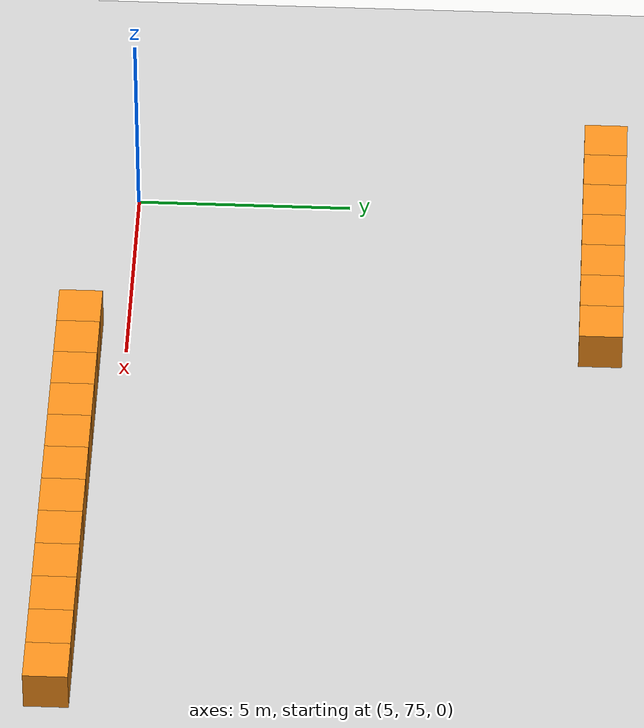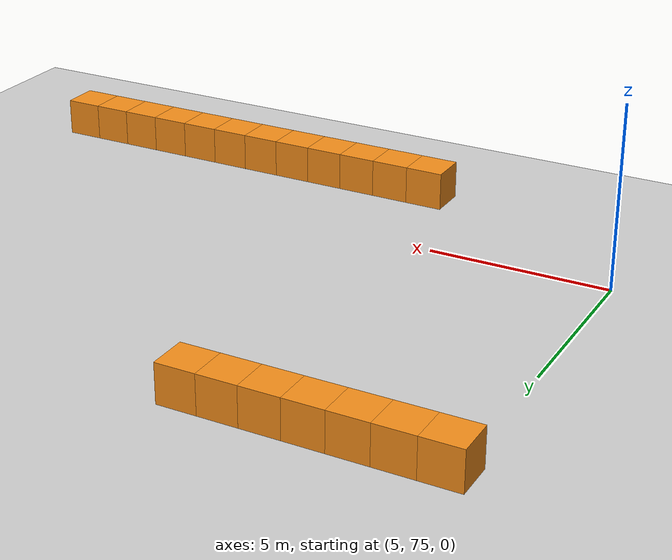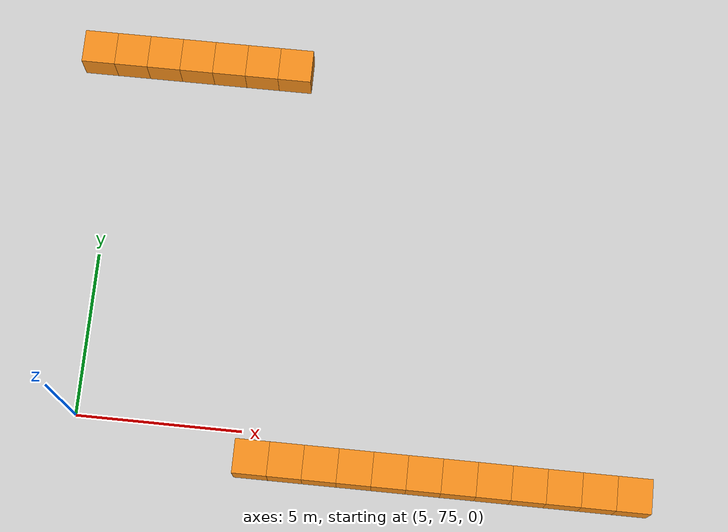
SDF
<sdf version="1.6">
 <world name="default">
  <include><uri>model://ground_plane</uri></include>
  <model name="unit_box_009">
   <pose>4.50    86.00     1.50 0 0 0</pose>
   <static>1</static>
   <link name="link">
    <inertial>
     <mass>5000</mass>
     <inertia><ixx>200</ixx><ixy>0</ixy><ixz>0</ixz><iyy>200</iyy><iyz>0</iyz><izz>200</izz></inertia>
    </inertial>
    <collision name="collision"><geometry><box><size>1 1 1</size></box></geometry></collision>
    <visual name="visual">
     <geometry><box><size>1 1 1</size></box></geometry>
     <material>
      <script><name>Gazebo/Orange</name><uri>file://media/materials/scripts/gazebo.material</uri></script>
     </material>
    </visual>
   </link>
  </model>
  <model name="unit_box_022">
   <pose>5.50    86.00     1.50 0 0 0</pose>
   <static>1</static>
   <link name="link">
    <inertial>
     <mass>5000</mass>
     <inertia><ixx>200</ixx><ixy>0</ixy><ixz>0</ixz><iyy>200</iyy><iyz>0</iyz><izz>200</izz></inertia>
    </inertial>
    <collision name="collision"><geometry><box><size>1 1 1</size></box></geometry></collision>
    <visual name="visual">
     <geometry><box><size>1 1 1</size></box></geometry>
     <material>
      <script><name>Gazebo/Orange</name><uri>file://media/materials/scripts/gazebo.material</uri></script>
     </material>
    </visual>
   </link>
  </model>
  <model name="unit_box_035">
   <pose>6.50    86.00     1.50 0 0 0</pose>
   <static>1</static>
   <link name="link">
    <inertial>
     <mass>5000</mass>
     <inertia><ixx>200</ixx><ixy>0</ixy><ixz>0</ixz><iyy>200</iyy><iyz>0</iyz><izz>200</izz></inertia>
    </inertial>
    <collision name="collision"><geometry><box><size>1 1 1</size></box></geometry></collision>
    <visual name="visual">
     <geometry><box><size>1 1 1</size></box></geometry>
     <material>
      <script><name>Gazebo/Orange</name><uri>file://media/materials/scripts/gazebo.material</uri></script>
     </material>
    </visual>
   </link>
  </model>
  <model name="unit_box_048">
   <pose>7.50    86.00     1.50 0 0 0</pose>
   <static>1</static>
   <link name="link">
    <inertial>
     <mass>5000</mass>
     <inertia><ixx>200</ixx><ixy>0</ixy><ixz>0</ixz><iyy>200</iyy><iyz>0</iyz><izz>200</izz></inertia>
    </inertial>
    <collision name="collision"><geometry><box><size>1 1 1</size></box></geometry></collision>
    <visual name="visual">
     <geometry><box><size>1 1 1</size></box></geometry>
     <material>
      <script><name>Gazebo/Orange</name><uri>file://media/materials/scripts/gazebo.material</uri></script>
     </material>
    </visual>
   </link>
  </model>
  <model name="unit_box_061">
   <pose>8.50    86.00     1.50 0 0 0</pose>
   <static>1</static>
   <link name="link">
    <inertial>
     <mass>5000</mass>
     <inertia><ixx>200</ixx><ixy>0</ixy><ixz>0</ixz><iyy>200</iyy><iyz>0</iyz><izz>200</izz></inertia>
    </inertial>
    <collision name="collision"><geometry><box><size>1 1 1</size></box></geometry></collision>
    <visual name="visual">
     <geometry><box><size>1 1 1</size></box></geometry>
     <material>
      <script><name>Gazebo/Orange</name><uri>file://media/materials/scripts/gazebo.material</uri></script>
     </material>
    </visual>
   </link>
  </model>
  <model name="unit_box_074">
   <pose>9.50    86.00     1.50 0 0 0</pose>
   <static>1</static>
   <link name="link">
    <inertial>
     <mass>5000</mass>
     <inertia><ixx>200</ixx><ixy>0</ixy><ixz>0</ixz><iyy>200</iyy><iyz>0</iyz><izz>200</izz></inertia>
    </inertial>
    <collision name="collision"><geometry><box><size>1 1 1</size></box></geometry></collision>
    <visual name="visual">
     <geometry><box><size>1 1 1</size></box></geometry>
     <material>
      <script><name>Gazebo/Orange</name><uri>file://media/materials/scripts/gazebo.material</uri></script>
     </material>
    </visual>
   </link>
  </model>
  <model name="unit_box_086">
   <pose>10.50    74.00     1.50 0 0 0</pose>
   <static>1</static>
   <link name="link">
    <inertial>
     <mass>5000</mass>
     <inertia><ixx>200</ixx><ixy>0</ixy><ixz>0</ixz><iyy>200</iyy><iyz>0</iyz><izz>200</izz></inertia>
    </inertial>
    <collision name="collision"><geometry><box><size>1 1 1</size></box></geometry></collision>
    <visual name="visual">
     <geometry><box><size>1 1 1</size></box></geometry>
     <material>
      <script><name>Gazebo/Orange</name><uri>file://media/materials/scripts/gazebo.material</uri></script>
     </material>
    </visual>
   </link>
  </model>
  <model name="unit_box_087">
   <pose>10.50    86.00     1.50 0 0 0</pose>
   <static>1</static>
   <link name="link">
    <inertial>
     <mass>5000</mass>
     <inertia><ixx>200</ixx><ixy>0</ixy><ixz>0</ixz><iyy>200</iyy><iyz>0</iyz><izz>200</izz></inertia>
    </inertial>
    <collision name="collision"><geometry><box><size>1 1 1</size></box></geometry></collision>
    <visual name="visual">
     <geometry><box><size>1 1 1</size></box></geometry>
     <material>
      <script><name>Gazebo/Orange</name><uri>file://media/materials/scripts/gazebo.material</uri></script>
     </material>
    </visual>
   </link>
  </model>
  <model name="unit_box_099">
   <pose>11.50    74.00     1.50 0 0 0</pose>
   <static>1</static>
   <link name="link">
    <inertial>
     <mass>5000</mass>
     <inertia><ixx>200</ixx><ixy>0</ixy><ixz>0</ixz><iyy>200</iyy><iyz>0</iyz><izz>200</izz></inertia>
    </inertial>
    <collision name="collision"><geometry><box><size>1 1 1</size></box></geometry></collision>
    <visual name="visual">
     <geometry><box><size>1 1 1</size></box></geometry>
     <material>
      <script><name>Gazebo/Orange</name><uri>file://media/materials/scripts/gazebo.material</uri></script>
     </material>
    </visual>
   </link>
  </model>
  <model name="unit_box_112">
   <pose>12.50    74.00     1.50 0 0 0</pose>
   <static>1</static>
   <link name="link">
    <inertial>
     <mass>5000</mass>
     <inertia><ixx>200</ixx><ixy>0</ixy><ixz>0</ixz><iyy>200</iyy><iyz>0</iyz><izz>200</izz></inertia>
    </inertial>
    <collision name="collision"><geometry><box><size>1 1 1</size></box></geometry></collision>
    <visual name="visual">
     <geometry><box><size>1 1 1</size></box></geometry>
     <material>
      <script><name>Gazebo/Orange</name><uri>file://media/materials/scripts/gazebo.material</uri></script>
     </material>
    </visual>
   </link>
  </model>
  <model name="unit_box_125">
   <pose>13.50    74.00     1.50 0 0 0</pose>
   <static>1</static>
   <link name="link">
    <inertial>
     <mass>5000</mass>
     <inertia><ixx>200</ixx><ixy>0</ixy><ixz>0</ixz><iyy>200</iyy><iyz>0</iyz><izz>200</izz></inertia>
    </inertial>
    <collision name="collision"><geometry><box><size>1 1 1</size></box></geometry></collision>
    <visual name="visual">
     <geometry><box><size>1 1 1</size></box></geometry>
     <material>
      <script><name>Gazebo/Orange</name><uri>file://media/materials/scripts/gazebo.material</uri></script>
     </material>
    </visual>
   </link>
  </model>
  <model name="unit_box_138">
   <pose>14.50    74.00     1.50 0 0 0</pose>
   <static>1</static>
   <link name="link">
    <inertial>
     <mass>5000</mass>
     <inertia><ixx>200</ixx><ixy>0</ixy><ixz>0</ixz><iyy>200</iyy><iyz>0</iyz><izz>200</izz></inertia>
    </inertial>
    <collision name="collision"><geometry><box><size>1 1 1</size></box></geometry></collision>
    <visual name="visual">
     <geometry><box><size>1 1 1</size></box></geometry>
     <material>
      <script><name>Gazebo/Orange</name><uri>file://media/materials/scripts/gazebo.material</uri></script>
     </material>
    </visual>
   </link>
  </model>
  <model name="unit_box_151">
   <pose>15.50    74.00     1.50 0 0 0</pose>
   <static>1</static>
   <link name="link">
    <inertial>
     <mass>5000</mass>
     <inertia><ixx>200</ixx><ixy>0</ixy><ixz>0</ixz><iyy>200</iyy><iyz>0</iyz><izz>200</izz></inertia>
    </inertial>
    <collision name="collision"><geometry><box><size>1 1 1</size></box></geometry></collision>
    <visual name="visual">
     <geometry><box><size>1 1 1</size></box></geometry>
     <material>
      <script><name>Gazebo/Orange</name><uri>file://media/materials/scripts/gazebo.material</uri></script>
     </material>
    </visual>
   </link>
  </model>
  <model name="unit_box_164">
   <pose>16.50    74.00     1.50 0 0 0</pose>
   <static>1</static>
   <link name="link">
    <inertial>
     <mass>5000</mass>
     <inertia><ixx>200</ixx><ixy>0</ixy><ixz>0</ixz><iyy>200</iyy><iyz>0</iyz><izz>200</izz></inertia>
    </inertial>
    <collision name="collision"><geometry><box><size>1 1 1</size></box></geometry></collision>
    <visual name="visual">
     <geometry><box><size>1 1 1</size></box></geometry>
     <material>
      <script><name>Gazebo/Orange</name><uri>file://media/materials/scripts/gazebo.material</uri></script>
     </material>
    </visual>
   </link>
  </model>
  <model name="unit_box_177">
   <pose>17.50    74.00     1.50 0 0 0</pose>
   <static>1</static>
   <link name="link">
    <inertial>
     <mass>5000</mass>
     <inertia><ixx>200</ixx><ixy>0</ixy><ixz>0</ixz><iyy>200</iyy><iyz>0</iyz><izz>200</izz></inertia>
    </inertial>
    <collision name="collision"><geometry><box><size>1 1 1</size></box></geometry></collision>
    <visual name="visual">
     <geometry><box><size>1 1 1</size></box></geometry>
     <material>
      <script><name>Gazebo/Orange</name><uri>file://media/materials/scripts/gazebo.material</uri></script>
     </material>
    </visual>
   </link>
  </model>
  <model name="unit_box_190">
   <pose>18.50    74.00     1.50 0 0 0</pose>
   <static>1</static>
   <link name="link">
    <inertial>
     <mass>5000</mass>
     <inertia><ixx>200</ixx><ixy>0</ixy><ixz>0</ixz><iyy>200</iyy><iyz>0</iyz><izz>200</izz></inertia>
    </inertial>
    <collision name="collision"><geometry><box><size>1 1 1</size></box></geometry></collision>
    <visual name="visual">
     <geometry><box><size>1 1 1</size></box></geometry>
     <material>
      <script><name>Gazebo/Orange</name><uri>file://media/materials/scripts/gazebo.material</uri></script>
     </material>
    </visual>
   </link>
  </model>
  <model name="unit_box_203">
   <pose>19.50    74.00     1.50 0 0 0</pose>
   <static>1</static>
   <link name="link">
    <inertial>
     <mass>5000</mass>
     <inertia><ixx>200</ixx><ixy>0</ixy><ixz>0</ixz><iyy>200</iyy><iyz>0</iyz><izz>200</izz></inertia>
    </inertial>
    <collision name="collision"><geometry><box><size>1 1 1</size></box></geometry></collision>
    <visual name="visual">
     <geometry><box><size>1 1 1</size></box></geometry>
     <material>
      <script><name>Gazebo/Orange</name><uri>file://media/materials/scripts/gazebo.material</uri></script>
     </material>
    </visual>
   </link>
  </model>
  <model name="unit_box_216">
   <pose>20.50    74.00     1.50 0 0 0</pose>
   <static>1</static>
   <link name="link">
    <inertial>
     <mass>5000</mass>
     <inertia><ixx>200</ixx><ixy>0</ixy><ixz>0</ixz><iyy>200</iyy><iyz>0</iyz><izz>200</izz></inertia>
    </inertial>
    <collision name="collision"><geometry><box><size>1 1 1</size></box></geometry></collision>
    <visual name="visual">
     <geometry><box><size>1 1 1</size></box></geometry>
     <material>
      <script><name>Gazebo/Orange</name><uri>file://media/materials/scripts/gazebo.material</uri></script>
     </material>
    </visual>
   </link>
  </model>
  <model name="unit_box_229">
   <pose>21.50    74.00     1.50 0 0 0</pose>
   <static>1</static>
   <link name="link">
    <inertial>
     <mass>5000</mass>
     <inertia><ixx>200</ixx><ixy>0</ixy><ixz>0</ixz><iyy>200</iyy><iyz>0</iyz><izz>200</izz></inertia>
    </inertial>
    <collision name="collision"><geometry><box><size>1 1 1</size></box></geometry></collision>
    <visual name="visual">
     <geometry><box><size>1 1 1</size></box></geometry>
     <material>
      <script><name>Gazebo/Orange</name><uri>file://media/materials/scripts/gazebo.material</uri></script>
     </material>
    </visual>
   </link>
  </model>
 </world>
</sdf>
